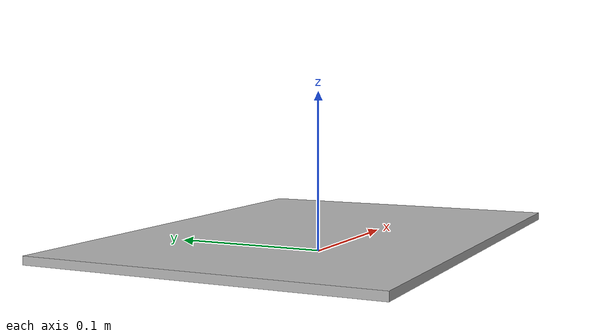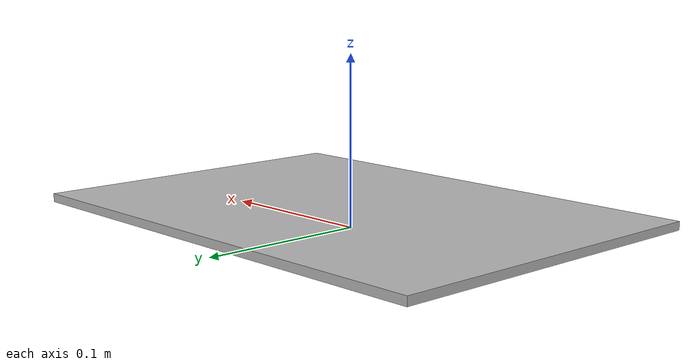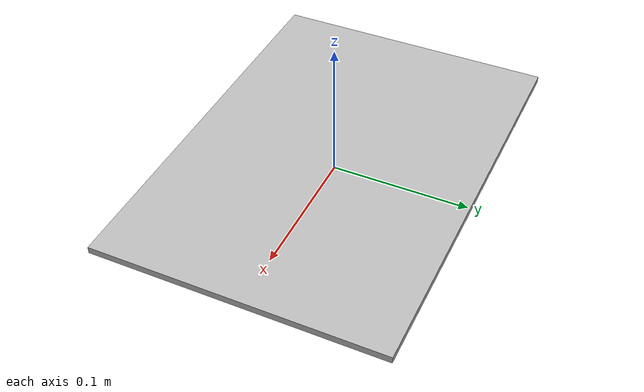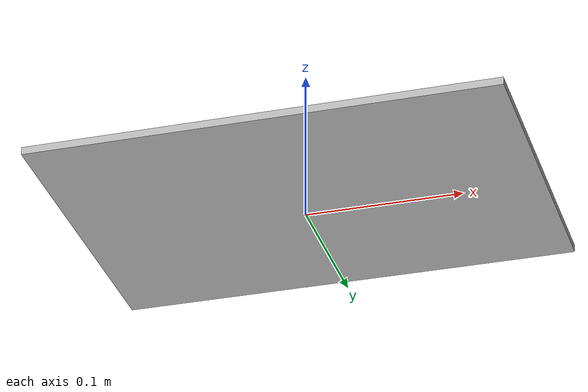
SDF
<?xml version="1.0" ?>
        <sdf version="1.5">
        <model name="3Markers">
              <link name="Main">
                <pose>0 0 0 0 0 3.1415</pose>
                    <visual name="3Markers_Visual">
                        <pose>0 0 0.01 0 0 0</pose>
                        <geometry>
                            <mesh>
                                <scale>1 1 1</scale>
                                <uri>3Markers.obj</uri>
                            </mesh>
                        </geometry>
                    </visual>
                    <gravity>1</gravity>
                    <velocity_decay/>
                    <self_collide>0</self_collide>
              </link>

              <plugin
                filename="Position_Control"
                name="gz::sim::v7::systems::PositionController">
                <timestep_precision>10</timestep_precision>
                <xyz_offset> 0 0 0</xyz_offset>
                <rpy_offset> 0 0 0</rpy_offset>
            </plugin>

          </model></sdf>
